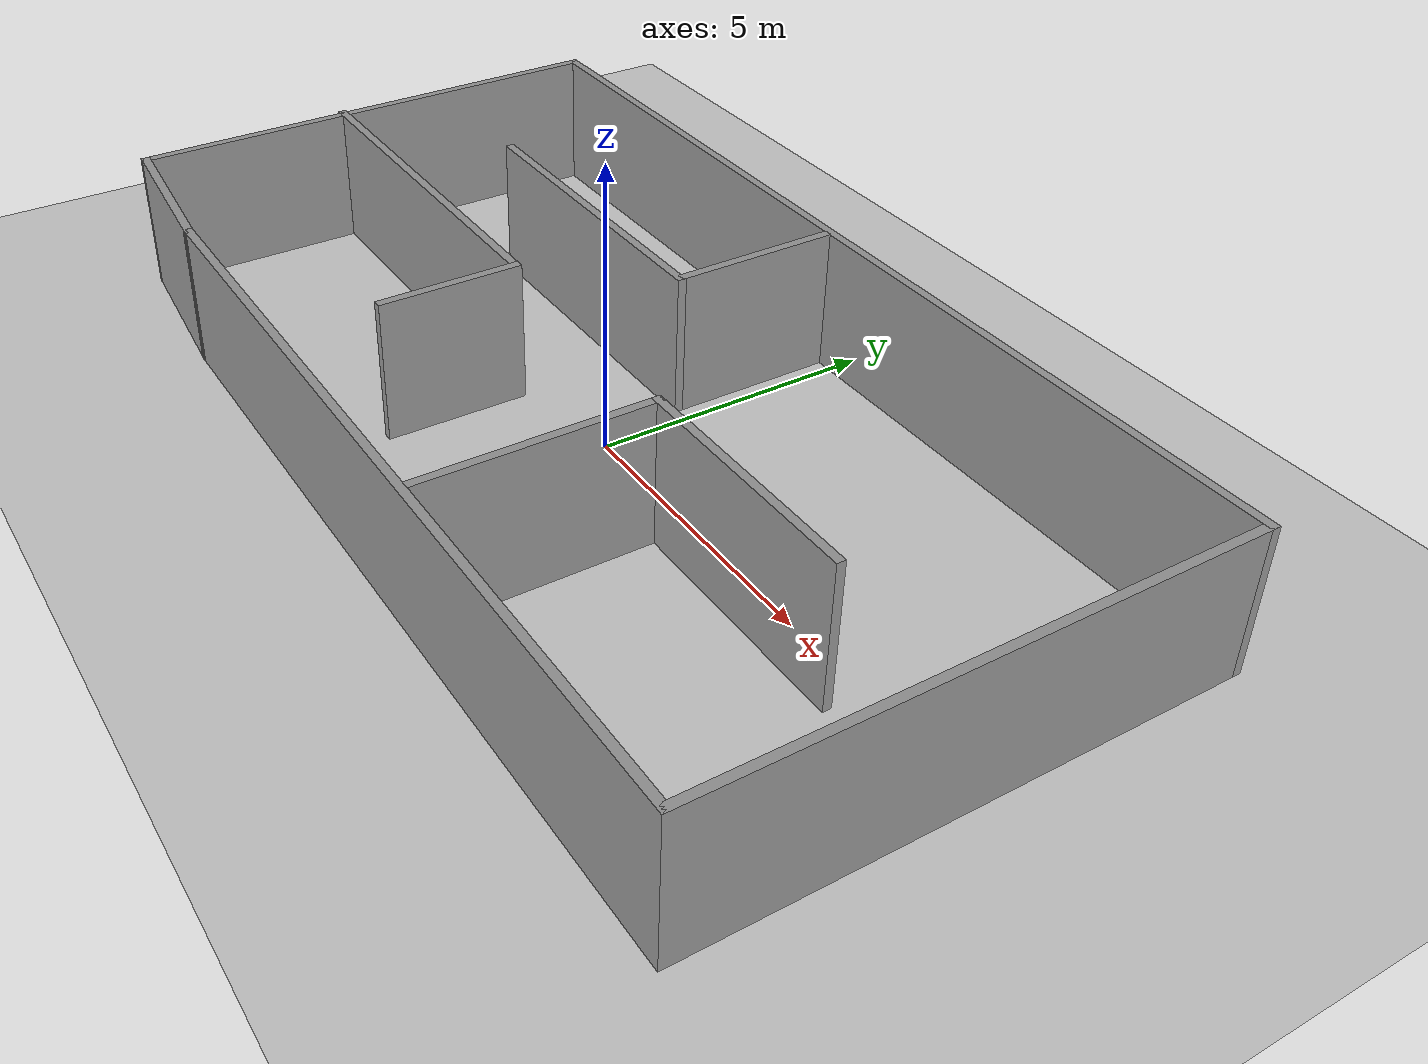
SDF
<sdf version="1.7">
 <world name="default">
  <light name="sun" type="directional">
   <pose>0 0 10 0 -0 0</pose>
   <diffuse>0.8 0.8 0.8 1</diffuse>
   <specular>0.2 0.2 0.2 1</specular>
   <attenuation>
    <range>1000</range>
    <constant>0.9</constant>
    <linear>0.01</linear>
    <quadratic>0.001</quadratic>
   </attenuation>
   <direction>-0.5 0.1 -0.9</direction>
   <spot><inner_angle>0</inner_angle><outer_angle>0</outer_angle><falloff>0</falloff></spot>
  </light>
  <model name="ground_plane">
   <static>1</static>
   <link name="link">
    <collision name="collision">
     <geometry><plane><normal>0 0 1</normal><size>100 100</size></plane></geometry>
     <surface><friction><ode><mu>100</mu><mu2>50</mu2></ode></friction></surface>
    </collision>
    <visual name="visual">
     <cast_shadows>0</cast_shadows>
     <geometry><plane><normal>0 0 1</normal><size>100 100</size></plane></geometry>
     <material>
      <script><uri>file://media/materials/scripts/gazebo.material</uri><name>Gazebo/Grey</name></script>
     </material>
    </visual>
   </link>
  </model>
  <gravity>0 0 -9.8</gravity>
  <magnetic_field>6e-06 2.3e-05 -4.2e-05</magnetic_field>
  <atmosphere type="adiabatic"/>
  <physics type="ode">
   <max_step_size>0.001</max_step_size>
   <real_time_factor>1</real_time_factor>
   <real_time_update_rate>1000</real_time_update_rate>
  </physics>
  <scene><ambient>0.4 0.4 0.4 1</ambient><background>0.7 0.7 0.7 1</background><shadows>1</shadows></scene>
  <audio><device>default</device></audio>
  <spherical_coordinates>
   <surface_model>EARTH_WGS84</surface_model>
   <latitude_deg>0</latitude_deg>
   <longitude_deg>0</longitude_deg>
   <elevation>0</elevation>
   <heading_deg>0</heading_deg>
  </spherical_coordinates>
  <model name="room">
   <pose>-0.045393 -0.022934 0 0 -0 0</pose>
   <link name="Wall_11">
    <collision name="Wall_11_Collision">
     <geometry><box><size>7 0.15 2.5</size></box></geometry>
     <pose>0 0 1.25 0 -0 0</pose>
    </collision>
    <visual name="Wall_11_Visual">
     <pose>0 0 1.25 0 -0 0</pose>
     <geometry><box><size>7 0.15 2.5</size></box></geometry>
     <material>
      <script><uri>file://media/materials/scripts/gazebo.material</uri><name>Gazebo/Grey</name></script>
      <ambient>1 1 1 1</ambient>
     </material>
     <meta><layer>0</layer></meta>
    </visual>
    <pose>-5.41155 -0.44524 0 0 -0 0</pose>
   </link>
   <link name="Wall_12">
    <collision name="Wall_12_Collision">
     <geometry><box><size>2.5 0.15 2.5</size></box></geometry>
     <pose>0 0 1.25 0 -0 0</pose>
    </collision>
    <visual name="Wall_12_Visual">
     <pose>0 0 1.25 0 -0 0</pose>
     <geometry><box><size>2.5 0.15 2.5</size></box></geometry>
     <material>
      <script><uri>file://media/materials/scripts/gazebo.material</uri><name>Gazebo/Grey</name></script>
      <ambient>1 1 1 1</ambient>
     </material>
     <meta><layer>0</layer></meta>
    </visual>
    <pose>-1.98655 -1.62024 0 0 -0 -1.5708</pose>
   </link>
   <link name="Wall_14">
    <collision name="Wall_14_Collision">
     <geometry><box><size>3 0.15 2.5</size></box></geometry>
     <pose>0 0 1.25 0 -0 0</pose>
    </collision>
    <visual name="Wall_14_Visual">
     <pose>0 0 1.25 0 -0 0</pose>
     <geometry><box><size>3 0.15 2.5</size></box></geometry>
     <material>
      <script><uri>file://media/materials/scripts/gazebo.material</uri><name>Gazebo/Grey</name></script>
      <ambient>1 1 1 1</ambient>
     </material>
     <meta><layer>0</layer></meta>
    </visual>
    <pose>-0.276152 2.99849 0 0 -0 -1.5708</pose>
   </link>
   <link name="Wall_15">
    <collision name="Wall_15_Collision">
     <geometry><box><size>5.75 0.15 2.5</size></box></geometry>
     <pose>0 0 1.25 0 -0 0</pose>
    </collision>
    <visual name="Wall_15_Visual">
     <pose>0 0 1.25 0 -0 0</pose>
     <geometry><box><size>5.75 0.15 2.5</size></box></geometry>
     <material>
      <script><uri>file://media/materials/scripts/gazebo.material</uri><name>Gazebo/Grey</name></script>
      <ambient>1 1 1 1</ambient>
     </material>
     <meta><layer>0</layer></meta>
    </visual>
    <pose>-3.07615 1.57349 0 0 -0 3.14159</pose>
   </link>
   <link name="Wall_17">
    <collision name="Wall_17_Collision">
     <geometry><box><size>4 0.15 2.5</size></box></geometry>
     <pose>0 0 1.25 0 -0 0</pose>
    </collision>
    <visual name="Wall_17_Visual">
     <pose>0 0 1.25 0 -0 0</pose>
     <geometry><box><size>4 0.15 2.5</size></box></geometry>
     <material>
      <script><uri>file://media/materials/scripts/gazebo.material</uri><name>Gazebo/Grey</name></script>
      <ambient>1 1 1 1</ambient>
     </material>
     <meta><layer>0</layer></meta>
    </visual>
    <pose>2.45248 -2.47942 0 0 -0 1.5708</pose>
   </link>
   <link name="Wall_18">
    <collision name="Wall_18_Collision">
     <geometry><box><size>4.25 0.15 2.5</size></box></geometry>
     <pose>0 0 1.25 0 -0 0</pose>
    </collision>
    <visual name="Wall_18_Visual">
     <pose>0 0 1.25 0 -0 0</pose>
     <geometry><box><size>4.25 0.15 2.5</size></box></geometry>
     <material>
      <script><uri>file://media/materials/scripts/gazebo.material</uri><name>Gazebo/Grey</name></script>
      <ambient>1 1 1 1</ambient>
     </material>
     <meta><layer>0</layer></meta>
    </visual>
    <pose>4.50247 -0.554425 0 0 -0 0</pose>
   </link>
   <link name="Wall_4">
    <collision name="Wall_4_Collision">
     <geometry><box><size>14.75 0.15 2.5</size></box></geometry>
     <pose>0 0 1.25 0 -0 0</pose>
    </collision>
    <visual name="Wall_4_Visual">
     <pose>0 0 1.25 0 -0 0</pose>
     <geometry><box><size>14.75 0.15 2.5</size></box></geometry>
     <material>
      <script><uri>file://media/materials/scripts/gazebo.material</uri><name>Gazebo/Grey</name></script>
      <ambient>1 1 1 1</ambient>
     </material>
     <meta><layer>0</layer></meta>
    </visual>
    <pose>1.53655 -4.54702 0 0 -0 0</pose>
   </link>
   <link name="Wall_5">
    <collision name="Wall_5_Collision">
     <geometry><box><size>9.25 0.15 2.5</size></box></geometry>
     <pose>0 0 1.25 0 -0 0</pose>
    </collision>
    <visual name="Wall_5_Visual">
     <pose>0 0 1.25 0 -0 0</pose>
     <geometry><box><size>9.25 0.15 2.5</size></box></geometry>
     <material>
      <script><uri>file://media/materials/scripts/gazebo.material</uri><name>Gazebo/Grey</name></script>
      <ambient>1 1 1 1</ambient>
     </material>
     <meta><layer>0</layer></meta>
    </visual>
    <pose>8.83655 0.002985 0 0 -0 1.5708</pose>
   </link>
   <link name="Wall_6">
    <collision name="Wall_6_Collision">
     <geometry><box><size>17.75 0.15 2.5</size></box></geometry>
     <pose>0 0 1.25 0 -0 0</pose>
    </collision>
    <visual name="Wall_6_Visual">
     <pose>0 0 1.25 0 -0 0</pose>
     <geometry><box><size>17.75 0.15 2.5</size></box></geometry>
     <material>
      <script><uri>file://media/materials/scripts/gazebo.material</uri><name>Gazebo/Grey</name></script>
      <ambient>1 1 1 1</ambient>
     </material>
     <meta><layer>0</layer></meta>
    </visual>
    <pose>0.036551 4.55298 0 0 -0 3.14159</pose>
   </link>
   <link name="Wall_7">
    <collision name="Wall_7_Collision">
     <geometry><box><size>9 0.15 2.5</size></box></geometry>
     <pose>0 0 1.25 0 -0 0</pose>
    </collision>
    <visual name="Wall_7_Visual">
     <pose>0 0 1.25 0 -0 0</pose>
     <geometry><box><size>9 0.15 2.5</size></box></geometry>
     <material>
      <script><uri>file://media/materials/scripts/gazebo.material</uri><name>Gazebo/Grey</name></script>
      <ambient>1 1 1 1</ambient>
     </material>
     <meta><layer>0</layer></meta>
    </visual>
    <pose>-8.76345 0.127985 0 0 -0 -1.5708</pose>
   </link>
   <link name="Wall_8">
    <collision name="Wall_8_Collision">
     <geometry><box><size>3.1604 0.15 2.5</size></box></geometry>
     <pose>0 0 1.25 0 -0 0</pose>
    </collision>
    <visual name="Wall_8_Visual">
     <pose>0 0 1.25 0 -0 0</pose>
     <geometry><box><size>3.1604 0.15 2.5</size></box></geometry>
     <material>
      <script><uri>file://media/materials/scripts/gazebo.material</uri><name>Gazebo/Grey</name></script>
      <ambient>1 1 1 1</ambient>
     </material>
     <meta><layer>0</layer></meta>
    </visual>
    <pose>-7.26345 -4.42202 0 0 -0 -0.083141</pose>
   </link>
   <link name="Wall_9">
    <collision name="Wall_9_Collision">
     <geometry><box><size>0.15 0.15 2.5</size></box></geometry>
     <pose>0 0 1.25 0 -0 0</pose>
    </collision>
    <visual name="Wall_9_Visual">
     <pose>0 0 1.25 0 -0 0</pose>
     <geometry><box><size>0.15 0.15 2.5</size></box></geometry>
     <material>
      <script><uri>file://media/materials/scripts/gazebo.material</uri><name>Gazebo/Grey</name></script>
      <ambient>1 1 1 1</ambient>
     </material>
     <meta><layer>0</layer></meta>
    </visual>
    <pose>-5.76345 -4.54702 0 0 -0 0</pose>
   </link>
   <static>1</static>
  </model>
 </world>
</sdf>
